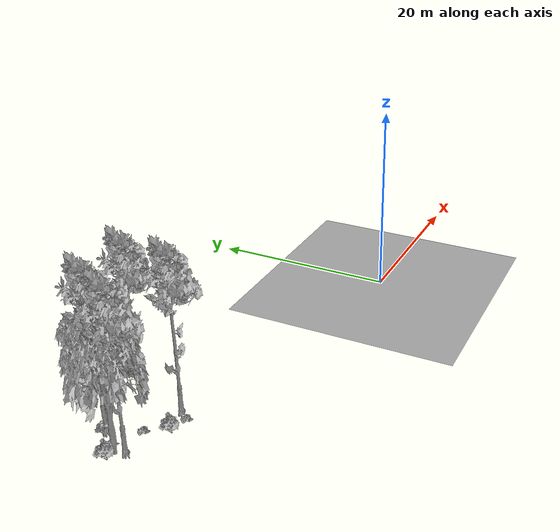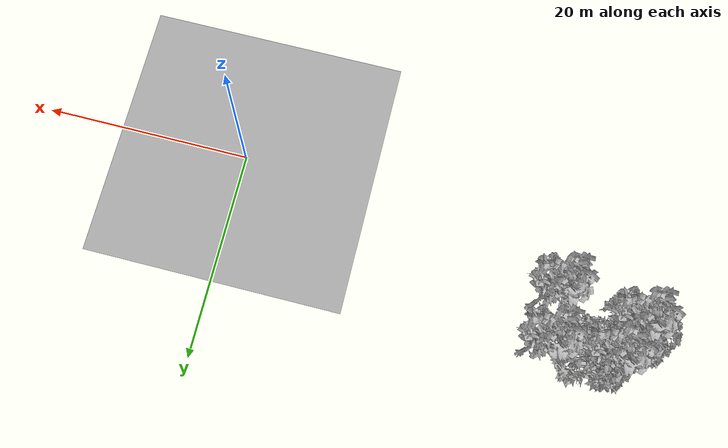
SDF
<sdf version="1.7">
 <world name="default">
  <model name="ground_plane">
   <static>1</static>
   <link name="link">
    <collision name="collision">
     <pose>-50 0 0 0 -0 0</pose>
     <geometry><plane><normal>0 0 1</normal><size>80 80</size></plane></geometry>
     <surface><contact><ode><min_depth>0.01</min_depth><max_vel>0</max_vel></ode></contact></surface>
    </collision>
    <visual name="grass">
     <cast_shadows>0</cast_shadows>
     <geometry>
      <mesh>
       <scale>0.46714285714285714 0.46714285714285714 0.1</scale>
       <uri>file://grass_plane/meshes/grass_plane.dae</uri>
      </mesh>
     </geometry>
    </visual>
   </link>
  </model>
  <model name="Tree 52">
   <static>1</static>
   <pose>-36.416851076391424 8.650371457112847 0 1.57079 -0 0</pose>
   <link name="link">
    <collision name="collision">
     <geometry><mesh><scale>3.5 5 3.5</scale><uri>model://tree_9/meshes/tree_9.obj</uri></mesh></geometry>
    </collision>
    <visual name="visual">
     <geometry><mesh><scale>3.5 5 3.5</scale><uri>model://tree_9/meshes/tree_9.obj</uri></mesh></geometry>
    </visual>
   </link>
  </model>
  <model name="Tree 64">
   <static>1</static>
   <pose>-34.83255948792626 11.867950992538923 0 1.57079 -0 0</pose>
   <link name="link">
    <collision name="collision">
     <geometry><mesh><scale>3.5 5 3.5</scale><uri>model://tree_9/meshes/tree_9.obj</uri></mesh></geometry>
    </collision>
    <visual name="visual">
     <geometry><mesh><scale>3.5 5 3.5</scale><uri>model://tree_9/meshes/tree_9.obj</uri></mesh></geometry>
    </visual>
   </link>
  </model>
  <model name="Tree 172">
   <static>1</static>
   <pose>-37.173599061326115 9.167055808879013 0 1.57079 -0 0</pose>
   <link name="link">
    <collision name="collision">
     <geometry><mesh><scale>3.5 5 3.5</scale><uri>model://tree_2/meshes/tree_2.obj</uri></mesh></geometry>
    </collision>
    <visual name="visual">
     <geometry><mesh><scale>3.5 5 3.5</scale><uri>model://tree_2/meshes/tree_2.obj</uri></mesh></geometry>
    </visual>
   </link>
  </model>
  <model name="Tree 324">
   <static>1</static>
   <pose>-29.535667937217703 11.96044547101333 0 1.57079 -0 0</pose>
   <link name="link">
    <collision name="collision">
     <geometry><mesh><scale>3.5 5 3.5</scale><uri>model://tree_9/meshes/tree_9.obj</uri></mesh></geometry>
    </collision>
    <visual name="visual">
     <geometry><mesh><scale>3.5 5 3.5</scale><uri>model://tree_9/meshes/tree_9.obj</uri></mesh></geometry>
    </visual>
   </link>
  </model>
  <model name="Tree 475">
   <static>1</static>
   <pose>-29.5997604651851 7.5184258847911565 0 1.57079 -0 0</pose>
   <link name="link">
    <collision name="collision">
     <geometry><mesh><scale>3.5 5 3.5</scale><uri>model://tree_9/meshes/tree_9.obj</uri></mesh></geometry>
    </collision>
    <visual name="visual">
     <geometry><mesh><scale>3.5 5 3.5</scale><uri>model://tree_9/meshes/tree_9.obj</uri></mesh></geometry>
    </visual>
   </link>
  </model>
  <model name="Tree 607">
   <static>1</static>
   <pose>-34.29562875108526 11.959782834081807 0 1.57079 -0 0</pose>
   <link name="link">
    <collision name="collision">
     <geometry><mesh><scale>3.5 5 3.5</scale><uri>model://tree_2/meshes/tree_2.obj</uri></mesh></geometry>
    </collision>
    <visual name="visual">
     <geometry><mesh><scale>3.5 5 3.5</scale><uri>model://tree_2/meshes/tree_2.obj</uri></mesh></geometry>
    </visual>
   </link>
  </model>
  <model name="Bush 213">
   <static>1</static>
   <pose>-38.079974540685214 9.272976298663508 0 1.57079 -0 0</pose>
   <link name="link">
    <collision name="collision">
     <geometry><mesh><scale>2 2 2</scale><uri>model://bush_1/meshes/bush_1.obj</uri></mesh></geometry>
     <surface><contact><collide_without_contact>false</collide_without_contact></contact></surface>
    </collision>
    <visual name="visual">
     <geometry><mesh><scale>2 2 2</scale><uri>model://bush_1/meshes/bush_1.obj</uri></mesh></geometry>
    </visual>
   </link>
  </model>
  <model name="Bush 266">
   <static>1</static>
   <pose>-32.81610297138704 6.378052072788108 0 1.57079 -0 0</pose>
   <link name="link">
    <collision name="collision">
     <geometry><mesh><scale>2 2 2</scale><uri>model://bush_1/meshes/bush_1.obj</uri></mesh></geometry>
     <surface><contact><collide_without_contact>false</collide_without_contact></contact></surface>
    </collision>
    <visual name="visual">
     <geometry><mesh><scale>2 2 2</scale><uri>model://bush_1/meshes/bush_1.obj</uri></mesh></geometry>
    </visual>
   </link>
  </model>
  <model name="Bush 288">
   <static>1</static>
   <pose>-33.767049367951515 8.696959873922204 0 1.57079 -0 0</pose>
   <link name="link">
    <collision name="collision">
     <geometry><mesh><scale>2 2 2</scale><uri>model://bush_2/meshes/bush_2.obj</uri></mesh></geometry>
     <surface><contact><collide_without_contact>false</collide_without_contact></contact></surface>
    </collision>
    <visual name="visual">
     <geometry><mesh><scale>2 2 2</scale><uri>model://bush_2/meshes/bush_2.obj</uri></mesh></geometry>
    </visual>
   </link>
  </model>
  <model name="Bush 535">
   <static>1</static>
   <pose>-36.2771417366502 10.139798764736156 0 1.57079 -0 0</pose>
   <link name="link">
    <collision name="collision">
     <geometry><mesh><scale>2 2 2</scale><uri>model://bush_2/meshes/bush_2.obj</uri></mesh></geometry>
     <surface><contact><collide_without_contact>false</collide_without_contact></contact></surface>
    </collision>
    <visual name="visual">
     <geometry><mesh><scale>2 2 2</scale><uri>model://bush_2/meshes/bush_2.obj</uri></mesh></geometry>
    </visual>
   </link>
  </model>
  <model name="Bush 536">
   <static>1</static>
   <pose>-30.76227119774402 6.205148342780632 0 1.57079 -0 0</pose>
   <link name="link">
    <collision name="collision">
     <geometry><mesh><scale>2 2 2</scale><uri>model://bush_2/meshes/bush_2.obj</uri></mesh></geometry>
     <surface><contact><collide_without_contact>false</collide_without_contact></contact></surface>
    </collision>
    <visual name="visual">
     <geometry><mesh><scale>2 2 2</scale><uri>model://bush_2/meshes/bush_2.obj</uri></mesh></geometry>
    </visual>
   </link>
  </model>
  <model name="Bush 567">
   <static>1</static>
   <pose>-35.58193394088907 11.617316027355152 0 1.57079 -0 0</pose>
   <link name="link">
    <collision name="collision">
     <geometry><mesh><scale>2 2 2</scale><uri>model://bush_0/meshes/bush_0.obj</uri></mesh></geometry>
     <surface><contact><collide_without_contact>false</collide_without_contact></contact></surface>
    </collision>
    <visual name="visual">
     <geometry><mesh><scale>2 2 2</scale><uri>model://bush_0/meshes/bush_0.obj</uri></mesh></geometry>
    </visual>
   </link>
  </model>
 </world>
</sdf>
